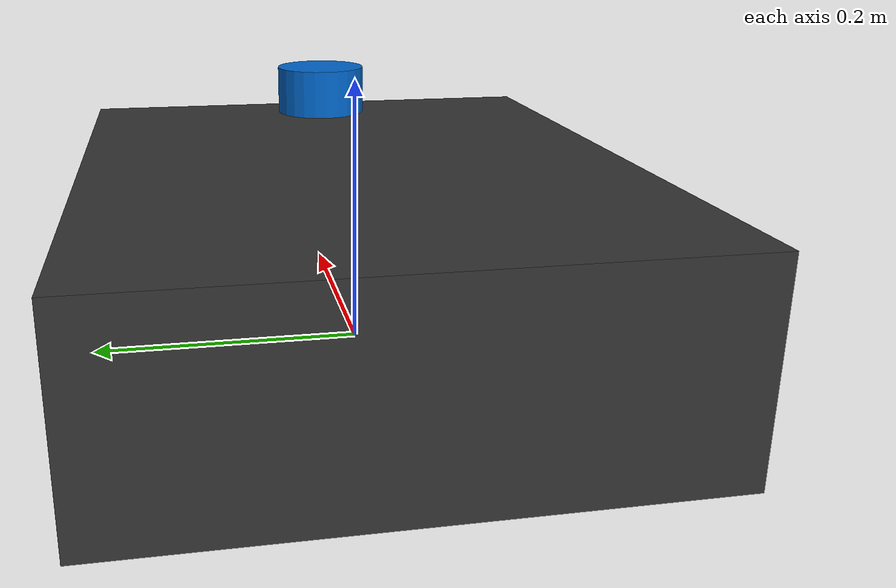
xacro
<?xml version="1.0"?>
<robot xmlns:xacro="http://www.ros.org/wiki/xacro" name="uet_amr">

  <!-- ==================== Properties ==================== -->
  <xacro:property name="base_width"  value="0.40"/>  <!-- meters -->
  <xacro:property name="base_length" value="0.50"/>
  <xacro:property name="base_height" value="0.15"/>
  <xacro:property name="wheel_radius" value="0.065"/>
  <xacro:property name="wheel_width"  value="0.04"/>
  <xacro:property name="wheel_base"   value="0.35"/>
  <xacro:property name="caster_radius" value="0.025"/>

  <!-- ==================== Base Link ==================== -->
  <link name="base_footprint"/>

  <joint name="base_footprint_joint" type="fixed">
    <parent link="base_footprint"/>
    <child  link="base_link"/>
    <origin xyz="0 0 ${wheel_radius}" rpy="0 0 0"/>
  </joint>

  <link name="base_link">
    <visual>
      <geometry>
        <box size="${base_length} ${base_width} ${base_height}"/>
      </geometry>
      <material name="dark_gray">
        <color rgba="0.2 0.2 0.2 1.0"/>
      </material>
    </visual>
    <collision>
      <geometry>
        <box size="${base_length} ${base_width} ${base_height}"/>
      </geometry>
    </collision>
    <inertial>
      <mass value="10.0"/>
      <inertia ixx="0.095" ixy="0.0" ixz="0.0"
               iyy="0.381" iyz="0.0"
               izz="0.476"/>
    </inertial>
  </link>

  <!-- ==================== Wheels ==================== -->
  <xacro:macro name="wheel" params="prefix x_offset y_offset">
    <link name="${prefix}_wheel">
      <visual>
        <geometry>
          <cylinder length="${wheel_width}" radius="${wheel_radius}"/>
        </geometry>
        <material name="black">
          <color rgba="0.05 0.05 0.05 1.0"/>
        </material>
      </visual>
      <collision>
        <geometry>
          <cylinder length="${wheel_width}" radius="${wheel_radius}"/>
        </geometry>
      </collision>
      <inertial>
        <mass value="0.5"/>
        <inertia ixx="0.00051" ixy="0" ixz="0"
                 iyy="0.00051" iyz="0"
                 izz="0.00102"/>
      </inertial>
    </link>

    <joint name="${prefix}_wheel_joint" type="continuous">
      <parent link="base_link"/>
      <child  link="${prefix}_wheel"/>
      <origin xyz="${x_offset} ${y_offset} 0" rpy="-1.5707 0 0"/>
      <axis xyz="0 0 1"/>
    </joint>
  </xacro:macro>

  <xacro:wheel prefix="left"  x_offset="0" y_offset=" ${wheel_base/2}"/>
  <xacro:wheel prefix="right" x_offset="0" y_offset="-${wheel_base/2}"/>

  <!-- ==================== Sensors (included) ==================== -->
  <xacro:include filename="$(find uet_amr_description)/urdf/sensors.urdf.xacro"/>

</robot>

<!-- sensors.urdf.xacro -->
<robot xmlns:xacro="http://www.ros.org/wiki/xacro">

  <!-- ==================== LiDAR ==================== -->
  <link name="lidar_link">
    <visual>
      <geometry>
        <cylinder length="0.04" radius="0.038"/>
      </geometry>
      <material name="blue">
        <color rgba="0.0 0.4 0.8 1.0"/>
      </material>
    </visual>
    <collision>
      <geometry>
        <cylinder length="0.04" radius="0.038"/>
      </geometry>
    </collision>
    <inertial>
      <mass value="0.185"/>
      <inertia ixx="0.0001" ixy="0" ixz="0"
               iyy="0.0001" iyz="0"
               izz="0.0001"/>
    </inertial>
  </link>

  <joint name="lidar_joint" type="fixed">
    <parent link="base_link"/>
    <child  link="lidar_link"/>
    <origin xyz="0.18 0 0.10" rpy="0 0 0"/>
  </joint>

  <!-- LiDAR sensor plugin (Gazebo) -->
  <gazebo reference="lidar_link">
    <sensor name="lidar" type="ray">
      <always_on>true</always_on>
      <visualize>true</visualize>
      <update_rate>10</update_rate>
      <ray>
        <scan>
          <horizontal>
            <samples>360</samples>
            <min_angle>-3.14159</min_angle>
            <max_angle>3.14159</max_angle>
          </horizontal>
        </scan>
        <range>
          <min>0.12</min>
          <max>12.0</max>
        </range>
      </ray>
      <plugin name="laser_controller" filename="libgazebo_ros_ray_sensor.so">
        <ros>
          <remapping>~/out:=scan</remapping>
        </ros>
        <output_type>sensor_msgs/LaserScan</output_type>
        <frame_name>lidar_link</frame_name>
      </plugin>
    </sensor>
  </gazebo>

  <!-- ==================== IMU ==================== -->
  <link name="imu_link">
    <visual>
      <geometry>
        <box size="0.03 0.03 0.01"/>
      </geometry>
    </visual>
    <inertial>
      <mass value="0.01"/>
      <inertia ixx="0.000001" ixy="0" ixz="0"
               iyy="0.000001" iyz="0"
               izz="0.000001"/>
    </inertial>
  </link>

  <joint name="imu_joint" type="fixed">
    <parent link="base_link"/>
    <child  link="imu_link"/>
    <origin xyz="0 0 0.05" rpy="0 0 0"/>
  </joint>

  <!-- ==================== Camera (optional) ==================== -->
  <!-- Uncomment to add depth/RGB camera -->

</robot>
